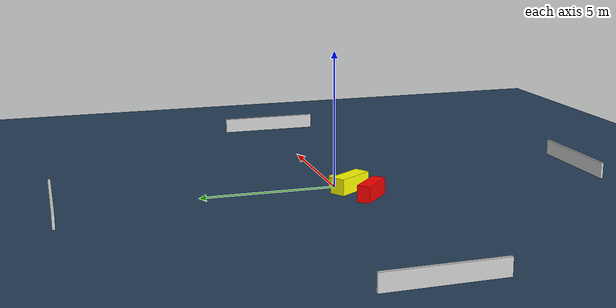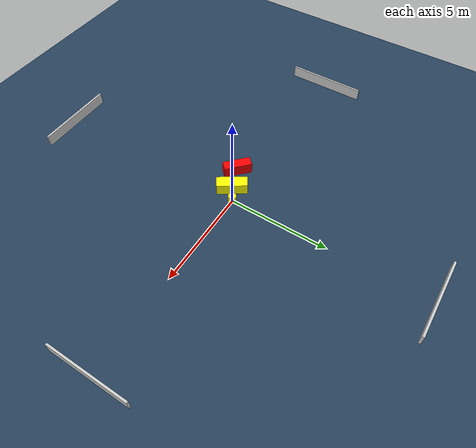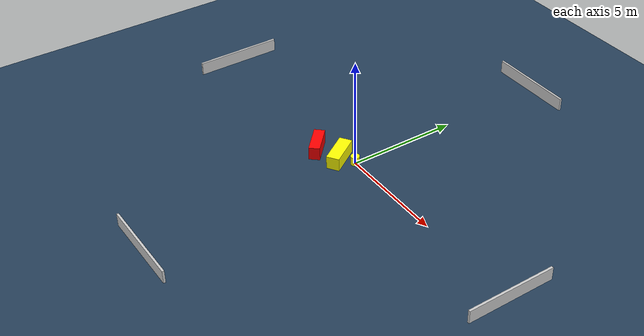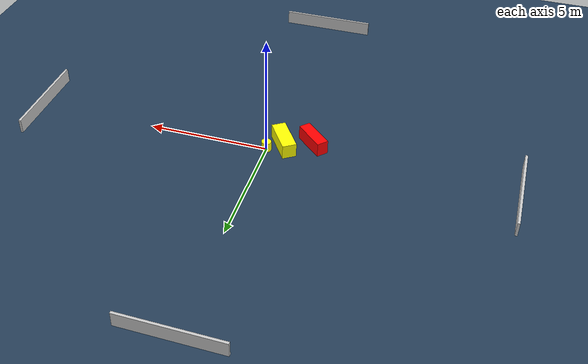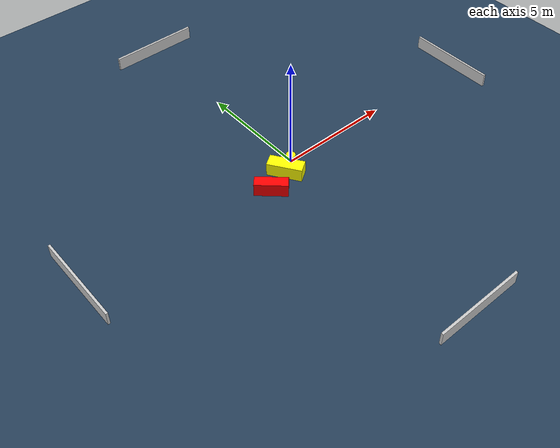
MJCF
<?xml version="1.0" ?>
<mujoco model="generated_environment">
  <option timestep="0.01" integrator="RK4" cone="elliptic"/>
  <default>
    <geom density="1"/>
  </default>
  <asset>
    <texture builtin="gradient" height="3072" name="skybox" rgb1="0.3 0.5 0.7" rgb2="0 0 0" type="skybox" width="512"/>
    <texture builtin="checker" height="300" name="groundplane" rgb1="0.2 0.3 0.4" rgb2="0.1 0.2 0.3" type="2d" width="300"/>
    <material name="groundplane" reflectance="0.2" texrepeat="5 5" texture="groundplane"/>
  </asset>
  <worldbody>
    <light dir="0 0 -1" directional="true" pos="0 0 1.5"/>
    <geom condim="3" friction="0.5 0.005 0.001" material="groundplane" name="floor" pos="0 0 0" size="0 0 0.05" type="plane"/>
    <body name="walls">
      <geom name="wall_1" condim="4" pos="-10.0 0.0 0.3" rgba="0.800000011920929 0.800000011920929 0.800000011920929 1.0" size="0.05 2.0 0.3" type="box"/>
      <geom name="wall_2" condim="4" pos="10.0 0.0 0.3" rgba="0.800000011920929 0.800000011920929 0.800000011920929 1.0" size="0.05 2.0 0.3" type="box"/>
      <geom name="wall_3" condim="4" pos="0.0 -10.0 0.3" rgba="0.800000011920929 0.800000011920929 0.800000011920929 1.0" size="2.0 0.05 0.3" type="box"/>
      <geom name="wall_4" condim="4" pos="0.0 10.0 0.3" rgba="0.800000011920929 0.800000011920929 0.800000011920929 1.0" size="2.0 0.05 0.3" type="box"/>
    </body>
    <body name="robot">
      <joint name="joint_x" type="slide" pos="0 0 0" axis="1 0 0"/>
      <joint name="joint_y" type="slide" pos="0 0 0" axis="0 1 0"/>
      <geom name="robot" type="cylinder" pos="0.0 0.0 0.2" size="0.2 0.2 0.0" mass="5.0" friction="1.0 0.005 0.0001" condim="4" rgba="1.0 1.0 0.0 1.0"/>
    </body>
    <body name="obstacle_1_movable">
      <geom name="obstacle_1_movable" condim="4" pos="-0.6082623401908587 -0.3999681326283675 0.3" euler="0 0 213.78986848941247" friction="0.0 0.005 0.001" rgba="1.0 1.0 0.0 1.0" size="0.2909198743720483 0.748115440299395 0.3" type="box" mass="0.1"/>
      <joint type="free"/>
    </body>
    <body name="obstacle_2_static">
      <geom name="obstacle_2_static" condim="4" pos="-1.730566538449688 -0.8144359716129929 0.3" euler="0 0 227.08579248094085" friction="0.0 0.005 0.001" rgba="1.0 0.0 0.0 1.0" size="0.24348610073091842 0.6922161031993219 0.3" type="box"/>
    </body>
  </worldbody>
  <actuator>
    <motor name="actuator_x" joint="joint_x" gear="1" ctrlrange="-1 1"/>
    <motor name="actuator_y" joint="joint_y" gear="1" ctrlrange="-1 1"/>
  </actuator>
</mujoco>
